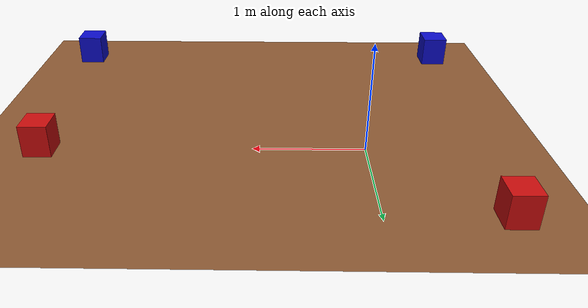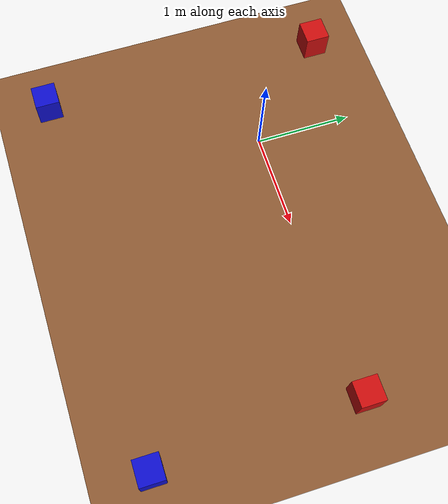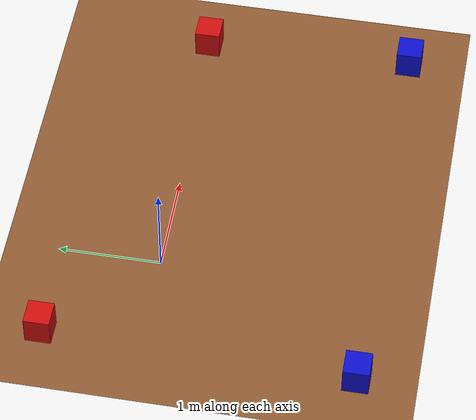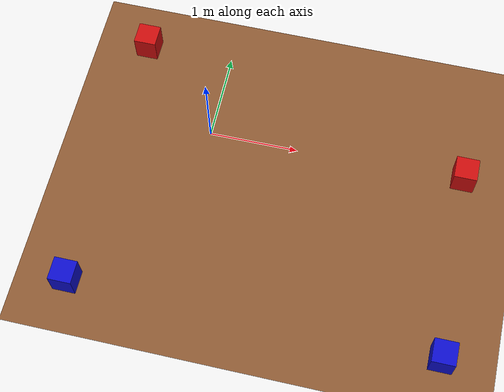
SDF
<sdf version="1.5">
 <world name="maze_4_metal_6x6_victimas">
  <physics type="ode">
   <max_step_size>0.001</max_step_size>
   <real_time_factor>1</real_time_factor>
   <real_time_update_rate>1000</real_time_update_rate>
   <gravity>0 0 -9.8</gravity>
  </physics>
  <plugin filename="gz-sim-physics-system" name="gz::sim::systems::Physics"/>
  <plugin filename="gz-sim-user-commands-system" name="gz::sim::systems::UserCommands"/>
  <plugin filename="gz-sim-scene-broadcaster-system" name="gz::sim::systems::SceneBroadcaster"/>
  <plugin filename="gz-sim-contact-system" name="gz::sim::systems::Contact"/>
  <plugin filename="gz-sim-sensors-system" name="gz::sim::systems::Sensors">
   <render_engine>ogre2</render_engine>
  </plugin>
  <plugin filename="gz-sim-imu-system" name="gz::sim::systems::Imu"/>
  <scene>
   <shadows>false</shadows>
   <ambient>0.93 0.93 0.93 1</ambient>
   <background>1 1 1 1</background>
   <grid>false</grid>
   <origin_visual>false</origin_visual>
  </scene>
  <include><uri>model://sun</uri></include>
  <light name="camera_spot_1_light" type="spot">
   <pose>-6 4 4 0 -1 -0.8</pose>
   <diffuse>0.5 0.5 0.5 1</diffuse>
   <specular>0.1 0.1 0.1 1</specular>
   <direction>0 0 -1</direction>
   <attenuation>
    <range>20</range>
    <constant>0.2</constant>
    <linear>0.01</linear>
    <quadratic>0.001</quadratic>
   </attenuation>
   <cast_shadows>0</cast_shadows>
   <spot><inner_angle>0.6</inner_angle><outer_angle>1</outer_angle><falloff>1</falloff></spot>
  </light>
  <light name="camera_spot_2_light" type="spot">
   <pose>5 -3 4 0 0.8 -0.6</pose>
   <diffuse>0.5 0.5 0.5 1</diffuse>
   <specular>0.1 0.1 0.1 1</specular>
   <direction>0 0 -1</direction>
   <attenuation>
    <range>20</range>
    <constant>0.3</constant>
    <linear>0.01</linear>
    <quadratic>0.001</quadratic>
   </attenuation>
   <cast_shadows>0</cast_shadows>
   <spot><inner_angle>0.6</inner_angle><outer_angle>1</outer_angle><falloff>1</falloff></spot>
  </light>
  <include><uri>model://floor_parquet2</uri><pose>0.5 -0.5 0 0 0 0</pose></include>
  <model name="marcas_color">
   <static>1</static>
   <link name="cuadrado_rojo_1">
    <pose>2.8712 0.0424 0.15 0 0 0</pose>
    <collision name="collision"><geometry><box><size>0.25 0.25 0.3</size></box></geometry></collision>
    <visual name="visual">
     <geometry><box><size>0.25 0.25 0.3</size></box></geometry>
     <material>
      <ambient>0.8 0.05 0.05 1</ambient>
      <diffuse>0.8 0.05 0.05 1</diffuse>
      <specular>0.1 0.1 0.1 1</specular>
     </material>
    </visual>
   </link>
   <link name="cuadrado_azul_1">
    <pose>2.9382 -2.0381 0.15 0 0 0</pose>
    <collision name="collision"><geometry><box><size>0.25 0.25 0.3</size></box></geometry></collision>
    <visual name="visual">
     <geometry><box><size>0.25 0.25 0.3</size></box></geometry>
     <material>
      <ambient>0.05 0.05 0.8 1</ambient>
      <diffuse>0.05 0.05 0.8 1</diffuse>
      <specular>0.1 0.1 0.1 1</specular>
     </material>
    </visual>
   </link>
   <link name="cuadrado_rojo_2">
    <pose>-0.9851 0.9609 0.15 0 0 0</pose>
    <collision name="collision"><geometry><box><size>0.25 0.25 0.3</size></box></geometry></collision>
    <visual name="visual">
     <geometry><box><size>0.25 0.25 0.3</size></box></geometry>
     <material>
      <ambient>0.8 0.05 0.05 1</ambient>
      <diffuse>0.8 0.05 0.05 1</diffuse>
      <specular>0.1 0.1 0.1 1</specular>
     </material>
    </visual>
   </link>
   <link name="cuadrado_azul_2">
    <pose>-1.0404 -2.0497 0.15 0 0 0</pose>
    <collision name="collision"><geometry><box><size>0.25 0.25 0.3</size></box></geometry></collision>
    <visual name="visual">
     <geometry><box><size>0.25 0.25 0.3</size></box></geometry>
     <material>
      <ambient>0.05 0.05 0.8 1</ambient>
      <diffuse>0.05 0.05 0.8 1</diffuse>
      <specular>0.1 0.1 0.1 1</specular>
     </material>
    </visual>
   </link>
  </model>
 </world>
</sdf>

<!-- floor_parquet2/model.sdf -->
<sdf version='1.4'>
  <model name='parquet2_plane'>
    <static>true</static>
    <link name='link'>
      <collision name='collision_parquet2'>
        <geometry>
          <plane>
            <normal>0 0 1</normal>
            <size>500 500</size>
          </plane>
        </geometry>
        <surface>
          <friction>
            <ode>
              <mu>0.5</mu>
              <mu2>.5</mu2>
            </ode>
          </friction>
        </surface>
      </collision>
      <visual name='visual_parquet2'>
        <pose>0 0 0 0 0 0</pose>

        <cast_shadows>false</cast_shadows>
        <geometry>
          <plane>
            <normal>0 0 1</normal>
            <size>9 9</size>
          </plane>
        </geometry>
        <material>
          <ambient>0.35 0.22 0.13 1</ambient>
          <diffuse>0.55 0.35 0.20 1</diffuse>
          <specular>0.05 0.05 0.05 1</specular>
        </material>
      </visual>
    </link>
  </model>
</sdf>
